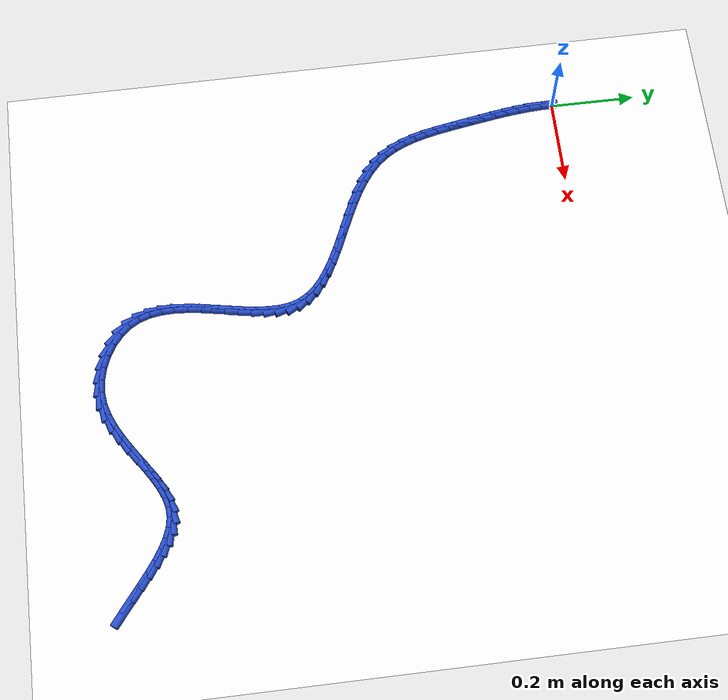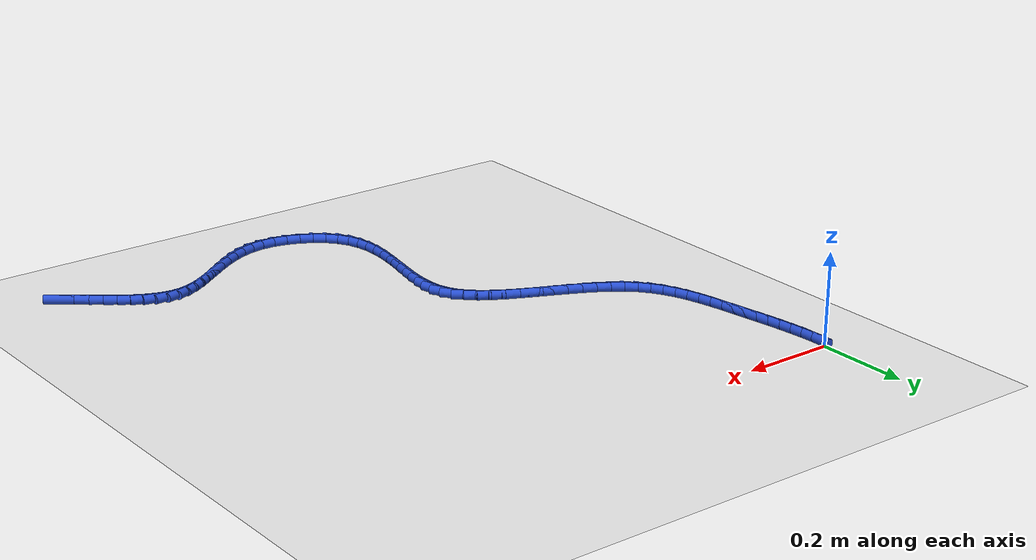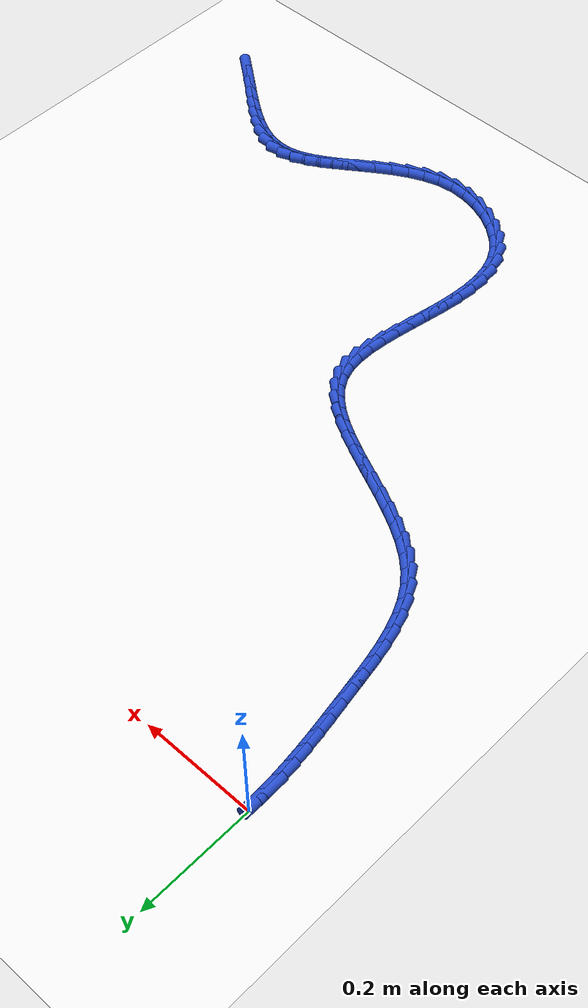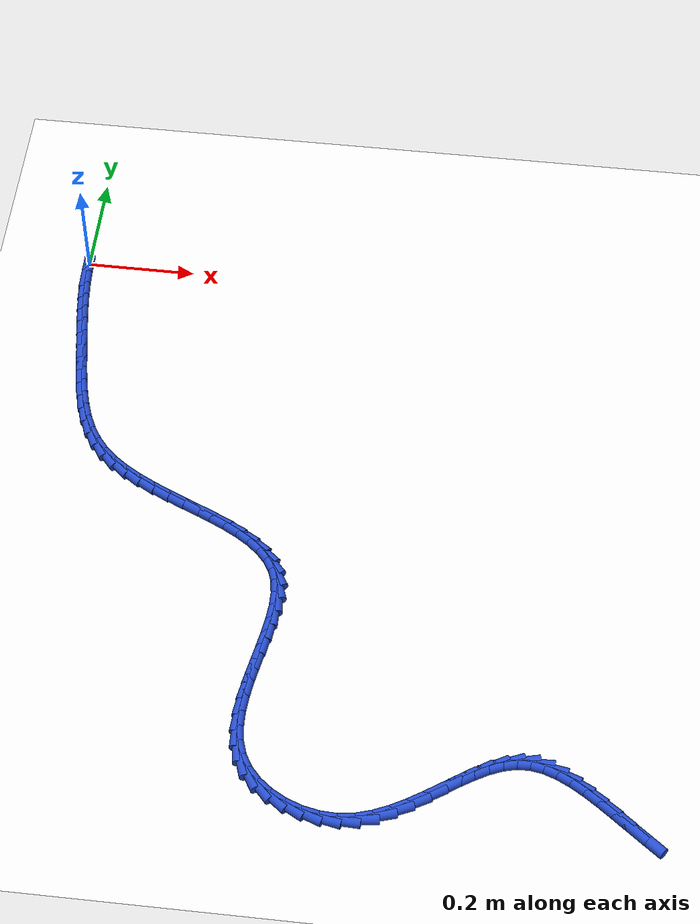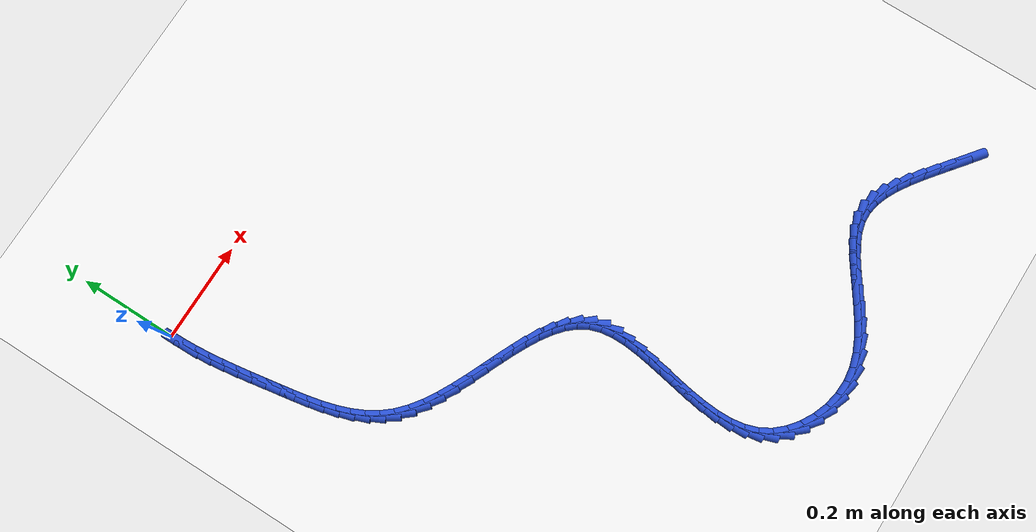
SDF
<sdf version="1.6">
 <world name="default">
  <model name="ground_plane">
   <static>1</static>
   <link name="link">
    <collision name="collision">
     <geometry><plane><normal>0 0 1</normal><size>100 100</size></plane></geometry>
     <surface><friction><ode><mu>100</mu><mu2>50</mu2></ode></friction></surface>
    </collision>
    <visual name="visual">
     <cast_shadows>0</cast_shadows>
     <geometry><plane><normal>0 0 1</normal><size>100 100</size></plane></geometry>
     <material>
      <script><uri>file://media/materials/scripts/gazebo.material</uri><name>Gazebo/WhiteGlow</name></script>
     </material>
    </visual>
   </link>
  </model>
  <model name="line">
   <link name="link_210">
    <pose>1.1062057333107558 -1.1057353948399997 0.01 0 1.57 -0.6610815016299213</pose>
    <collision name="collision">
     <geometry><cylinder><radius>0.01</radius><length>0.08</length></cylinder></geometry>
    </collision>
    <visual name="visual">
     <material>
      <script><name>Gazebo/Blue</name><uri>file://media/materials/scripts/gazebo.material</uri></script>
     </material>
     <geometry><cylinder><radius>0.01</radius><length>0.08</length></cylinder></geometry>
    </visual>
   </link>
   <link name="link_211">
    <pose>1.0803306460984332 -1.085608735080227 0.01 0 1.57 -0.6657473466271625</pose>
    <collision name="collision">
     <geometry><cylinder><radius>0.01</radius><length>0.08</length></cylinder></geometry>
    </collision>
    <visual name="visual">
     <material>
      <script><name>Gazebo/Blue</name><uri>file://media/materials/scripts/gazebo.material</uri></script>
     </material>
     <geometry><cylinder><radius>0.01</radius><length>0.08</length></cylinder></geometry>
    </visual>
   </link>
   <link name="link_212">
    <pose>1.0551812936713683 -1.0658575534856805 0.01 0 1.57 -0.6522005505919386</pose>
    <collision name="collision">
     <geometry><cylinder><radius>0.01</radius><length>0.08</length></cylinder></geometry>
    </collision>
    <visual name="visual">
     <material>
      <script><name>Gazebo/Blue</name><uri>file://media/materials/scripts/gazebo.material</uri></script>
     </material>
     <geometry><cylinder><radius>0.01</radius><length>0.08</length></cylinder></geometry>
    </visual>
   </link>
   <link name="link_213">
    <pose>1.0306461441278354 -1.0471204892540156 0.01 0 1.57 -0.6179934613506017</pose>
    <collision name="collision">
     <geometry><cylinder><radius>0.01</radius><length>0.08</length></cylinder></geometry>
    </collision>
    <visual name="visual">
     <material>
      <script><name>Gazebo/Blue</name><uri>file://media/materials/scripts/gazebo.material</uri></script>
     </material>
     <geometry><cylinder><radius>0.01</radius><length>0.08</length></cylinder></geometry>
    </visual>
   </link>
   <link name="link_214">
    <pose>1.0066136655661073 -1.0300361815828876 0.01 0 1.57 -0.5591185108432015</pose>
    <collision name="collision">
     <geometry><cylinder><radius>0.01</radius><length>0.08</length></cylinder></geometry>
    </collision>
    <visual name="visual">
     <material>
      <script><name>Gazebo/Blue</name><uri>file://media/materials/scripts/gazebo.material</uri></script>
     </material>
     <geometry><cylinder><radius>0.01</radius><length>0.08</length></cylinder></geometry>
    </visual>
   </link>
   <link name="link_215">
    <pose>0.9829723260844585 -1.0152432696699512 0.01 0 1.57 -0.46986095014363216</pose>
    <collision name="collision">
     <geometry><cylinder><radius>0.01</radius><length>0.08</length></cylinder></geometry>
    </collision>
    <visual name="visual">
     <material>
      <script><name>Gazebo/Blue</name><uri>file://media/materials/scripts/gazebo.material</uri></script>
     </material>
     <geometry><cylinder><radius>0.01</radius><length>0.08</length></cylinder></geometry>
    </visual>
   </link>
   <link name="link_216">
    <pose>0.9596105937811626 -1.003380392712862 0.01 0 1.57 -0.3434350857557089</pose>
    <collision name="collision">
     <geometry><cylinder><radius>0.01</radius><length>0.08</length></cylinder></geometry>
    </collision>
    <visual name="visual">
     <material>
      <script><name>Gazebo/Blue</name><uri>file://media/materials/scripts/gazebo.material</uri></script>
     </material>
     <geometry><cylinder><radius>0.01</radius><length>0.08</length></cylinder></geometry>
    </visual>
   </link>
   <link name="link_217">
    <pose>0.9364169367544926 -0.9950861899092748 0.01 0 1.57 -0.17483438120173153</pose>
    <collision name="collision">
     <geometry><cylinder><radius>0.01</radius><length>0.08</length></cylinder></geometry>
    </collision>
    <visual name="visual">
     <material>
      <script><name>Gazebo/Blue</name><uri>file://media/materials/scripts/gazebo.material</uri></script>
     </material>
     <geometry><cylinder><radius>0.01</radius><length>0.08</length></cylinder></geometry>
    </visual>
   </link>
   <link name="link_218">
    <pose>0.9132798231027238 -0.9909993004568451 0.01 0 1.57 0.03270519727304291</pose>
    <collision name="collision">
     <geometry><cylinder><radius>0.01</radius><length>0.08</length></cylinder></geometry>
    </collision>
    <visual name="visual">
     <material>
      <script><name>Gazebo/Blue</name><uri>file://media/materials/scripts/gazebo.material</uri></script>
     </material>
     <geometry><cylinder><radius>0.01</radius><length>0.08</length></cylinder></geometry>
    </visual>
   </link>
   <link name="link_219">
    <pose>0.8900877267090588 -0.991758073099178 0.01 0 1.57 0.2465771402880418</pose>
    <collision name="collision">
     <geometry><cylinder><radius>0.01</radius><length>0.08</length></cylinder></geometry>
    </collision>
    <visual name="visual">
     <material>
      <script><name>Gazebo/Blue</name><uri>file://media/materials/scripts/gazebo.material</uri></script>
     </material>
     <geometry><cylinder><radius>0.01</radius><length>0.08</length></cylinder></geometry>
    </visual>
   </link>
   <link name="link_220">
    <pose>0.8667363965958401 -0.9976355809946775 0.01 0 1.57 0.4077103472474255</pose>
    <collision name="collision">
     <geometry><cylinder><radius>0.01</radius><length>0.08</length></cylinder></geometry>
    </collision>
    <visual name="visual">
     <material>
      <script><name>Gazebo/Blue</name><uri>file://media/materials/scripts/gazebo.material</uri></script>
     </material>
     <geometry><cylinder><radius>0.01</radius><length>0.08</length></cylinder></geometry>
    </visual>
   </link>
   <link name="link_221">
    <pose>0.8431430737289984 -1.0078258138476144 0.01 0 1.57 0.5138796409796674</pose>
    <collision name="collision">
     <geometry><cylinder><radius>0.01</radius><length>0.08</length></cylinder></geometry>
    </collision>
    <visual name="visual">
     <material>
      <script><name>Gazebo/Blue</name><uri>file://media/materials/scripts/gazebo.material</uri></script>
     </material>
     <geometry><cylinder><radius>0.01</radius><length>0.08</length></cylinder></geometry>
    </visual>
   </link>
   <link name="link_222">
    <pose>0.8192289486018826 -1.0213244605584415 0.01 0 1.57 0.5763411163817668</pose>
    <collision name="collision">
     <geometry><cylinder><radius>0.01</radius><length>0.08</length></cylinder></geometry>
    </collision>
    <visual name="visual">
     <material>
      <script><name>Gazebo/Blue</name><uri>file://media/materials/scripts/gazebo.material</uri></script>
     </material>
     <geometry><cylinder><radius>0.01</radius><length>0.08</length></cylinder></geometry>
    </visual>
   </link>
   <link name="link_223">
    <pose>0.7949152117078419 -1.0371272100276125 0.01 0 1.57 0.6038723555258212</pose>
    <collision name="collision">
     <geometry><cylinder><radius>0.01</radius><length>0.08</length></cylinder></geometry>
    </collision>
    <visual name="visual">
     <material>
      <script><name>Gazebo/Blue</name><uri>file://media/materials/scripts/gazebo.material</uri></script>
     </material>
     <geometry><cylinder><radius>0.01</radius><length>0.08</length></cylinder></geometry>
    </visual>
   </link>
   <link name="link_224">
    <pose>0.7701230535402256 -1.0542297511555807 0.01 0 1.57 0.6014917742395954</pose>
    <collision name="collision">
     <geometry><cylinder><radius>0.01</radius><length>0.08</length></cylinder></geometry>
    </collision>
    <visual name="visual">
     <material>
      <script><name>Gazebo/Blue</name><uri>file://media/materials/scripts/gazebo.material</uri></script>
     </material>
     <geometry><cylinder><radius>0.01</radius><length>0.08</length></cylinder></geometry>
    </visual>
   </link>
   <link name="link_225">
    <pose>0.7447736645923826 -1.0716277728427996 0.01 0 1.57 0.570909099315519</pose>
    <collision name="collision">
     <geometry><cylinder><radius>0.01</radius><length>0.08</length></cylinder></geometry>
    </collision>
    <visual name="visual">
     <material>
      <script><name>Gazebo/Blue</name><uri>file://media/materials/scripts/gazebo.material</uri></script>
     </material>
     <geometry><cylinder><radius>0.01</radius><length>0.08</length></cylinder></geometry>
    </visual>
   </link>
   <link name="link_226">
    <pose>0.7187882353576612 -1.088316963989723 0.01 0 1.57 0.5111692960184688</pose>
    <collision name="collision">
     <geometry><cylinder><radius>0.01</radius><length>0.08</length></cylinder></geometry>
    </collision>
    <visual name="visual">
     <material>
      <script><name>Gazebo/Blue</name><uri>file://media/materials/scripts/gazebo.material</uri></script>
     </material>
     <geometry><cylinder><radius>0.01</radius><length>0.08</length></cylinder></geometry>
    </visual>
   </link>
   <link name="link_227">
    <pose>0.6920879563294127 -1.1032930134968033 0.01 0 1.57 0.4194103037760361</pose>
    <collision name="collision">
     <geometry><cylinder><radius>0.01</radius><length>0.08</length></cylinder></geometry>
    </collision>
    <visual name="visual">
     <material>
      <script><name>Gazebo/Blue</name><uri>file://media/materials/scripts/gazebo.material</uri></script>
     </material>
     <geometry><cylinder><radius>0.01</radius><length>0.08</length></cylinder></geometry>
    </visual>
   </link>
   <link name="link_228">
    <pose>0.6645940180009849 -1.1155516102644947 0.01 0 1.57 0.29232692037844354</pose>
    <collision name="collision">
     <geometry><cylinder><radius>0.01</radius><length>0.08</length></cylinder></geometry>
    </collision>
    <visual name="visual">
     <material>
      <script><name>Gazebo/Blue</name><uri>file://media/materials/scripts/gazebo.material</uri></script>
     </material>
     <geometry><cylinder><radius>0.01</radius><length>0.08</length></cylinder></geometry>
    </visual>
   </link>
   <link name="link_229">
    <pose>0.6362276108657272 -1.1240884431932503 0.01 0 1.57 0.12933223231681004</pose>
    <collision name="collision">
     <geometry><cylinder><radius>0.01</radius><length>0.08</length></cylinder></geometry>
    </collision>
    <visual name="visual">
     <material>
      <script><name>Gazebo/Blue</name><uri>file://media/materials/scripts/gazebo.material</uri></script>
     </material>
     <geometry><cylinder><radius>0.01</radius><length>0.08</length></cylinder></geometry>
    </visual>
   </link>
   <link name="link_230">
    <pose>0.6069114308926543 -1.1279012526700385 0.01 0 1.57 -0.049611533000755714</pose>
    <collision name="collision">
     <geometry><cylinder><radius>0.01</radius><length>0.08</length></cylinder></geometry>
    </collision>
    <visual name="visual">
     <material>
      <script><name>Gazebo/Blue</name><uri>file://media/materials/scripts/gazebo.material</uri></script>
     </material>
     <geometry><cylinder><radius>0.01</radius><length>0.08</length></cylinder></geometry>
    </visual>
   </link>
   <link name="link_231">
    <pose>0.5768780386464855 -1.1264100263848502 0.01 0 1.57 -0.21259696583422433</pose>
    <collision name="collision">
     <geometry><cylinder><radius>0.01</radius><length>0.08</length></cylinder></geometry>
    </collision>
    <visual name="visual">
     <material>
      <script><name>Gazebo/Blue</name><uri>file://media/materials/scripts/gazebo.material</uri></script>
     </material>
     <geometry><cylinder><radius>0.01</radius><length>0.08</length></cylinder></geometry>
    </visual>
   </link>
   <link name="link_232">
    <pose>0.5470468330554319 -1.1199706951803194 0.01 0 1.57 -0.36409959662557956</pose>
    <collision name="collision">
     <geometry><cylinder><radius>0.01</radius><length>0.08</length></cylinder></geometry>
    </collision>
    <visual name="visual">
     <material>
      <script><name>Gazebo/Blue</name><uri>file://media/materials/scripts/gazebo.material</uri></script>
     </material>
     <geometry><cylinder><radius>0.01</radius><length>0.08</length></cylinder></geometry>
    </visual>
   </link>
   <link name="link_233">
    <pose>0.5184294517337069 -1.1090648820140847 0.01 0 1.57 -0.5136900114375678</pose>
    <collision name="collision">
     <geometry><cylinder><radius>0.01</radius><length>0.08</length></cylinder></geometry>
    </collision>
    <visual name="visual">
     <material>
      <script><name>Gazebo/Blue</name><uri>file://media/materials/scripts/gazebo.material</uri></script>
     </material>
     <geometry><cylinder><radius>0.01</radius><length>0.08</length></cylinder></geometry>
    </visual>
   </link>
   <link name="link_234">
    <pose>0.49203753229552255 -1.0941742098437828 0.01 0 1.57 -0.6713095345362318</pose>
    <collision name="collision">
     <geometry><cylinder><radius>0.01</radius><length>0.08</length></cylinder></geometry>
    </collision>
    <visual name="visual">
     <material>
      <script><name>Gazebo/Blue</name><uri>file://media/materials/scripts/gazebo.material</uri></script>
     </material>
     <geometry><cylinder><radius>0.01</radius><length>0.08</length></cylinder></geometry>
    </visual>
   </link>
   <link name="link_235">
    <pose>0.46888271235509393 -1.075780301627052 0.01 0 1.57 -0.8475535793495111</pose>
    <collision name="collision">
     <geometry><cylinder><radius>0.01</radius><length>0.08</length></cylinder></geometry>
    </collision>
    <visual name="visual">
     <material>
      <script><name>Gazebo/Blue</name><uri>file://media/materials/scripts/gazebo.material</uri></script>
     </material>
     <geometry><cylinder><radius>0.01</radius><length>0.08</length></cylinder></geometry>
    </visual>
   </link>
   <link name="link_236">
    <pose>0.4499766295266333 -1.05436478032153 0.01 0 1.57 -1.050681556429276</pose>
    <collision name="collision">
     <geometry><cylinder><radius>0.01</radius><length>0.08</length></cylinder></geometry>
    </collision>
    <visual name="visual">
     <material>
      <script><name>Gazebo/Blue</name><uri>file://media/materials/scripts/gazebo.material</uri></script>
     </material>
     <geometry><cylinder><radius>0.01</radius><length>0.08</length></cylinder></geometry>
    </visual>
   </link>
   <link name="link_237">
    <pose>0.4362541380942949 -1.0304043292228466 0.01 0 1.57 -1.2523111166994865</pose>
    <collision name="collision">
     <geometry><cylinder><radius>0.01</radius><length>0.08</length></cylinder></geometry>
    </collision>
    <visual name="visual">
     <material>
      <script><name>Gazebo/Blue</name><uri>file://media/materials/scripts/gazebo.material</uri></script>
     </material>
     <geometry><cylinder><radius>0.01</radius><length>0.08</length></cylinder></geometry>
    </visual>
   </link>
   <link name="link_238">
    <pose>0.4276510487910825 -1.0043113606778407 0.01 0 1.57 -1.419515017268828</pose>
    <collision name="collision">
     <geometry><cylinder><radius>0.01</radius><length>0.08</length></cylinder></geometry>
    </collision>
    <visual name="visual">
     <material>
      <script><name>Gazebo/Blue</name><uri>file://media/materials/scripts/gazebo.material</uri></script>
     </material>
     <geometry><cylinder><radius>0.01</radius><length>0.08</length></cylinder></geometry>
    </visual>
   </link>
   <link name="link_239">
    <pose>0.4234042006075936 -0.9764533204480508 0.01 0 1.57 -1.5479635110189494</pose>
    <collision name="collision">
     <geometry><cylinder><radius>0.01</radius><length>0.08</length></cylinder></geometry>
    </collision>
    <visual name="visual">
     <material>
      <script><name>Gazebo/Blue</name><uri>file://media/materials/scripts/gazebo.material</uri></script>
     </material>
     <geometry><cylinder><radius>0.01</radius><length>0.08</length></cylinder></geometry>
    </visual>
   </link>
   <link name="link_240">
    <pose>0.42273607417055215 -0.9471967305858663 0.01 0 1.57 1.5004874083179267</pose>
    <collision name="collision">
     <geometry><cylinder><radius>0.01</radius><length>0.08</length></cylinder></geometry>
    </collision>
    <visual name="visual">
     <material>
      <script><name>Gazebo/Blue</name><uri>file://media/materials/scripts/gazebo.material</uri></script>
     </material>
     <geometry><cylinder><radius>0.01</radius><length>0.08</length></cylinder></geometry>
    </visual>
   </link>
   <link name="link_241">
    <pose>0.4248691501066818 -0.9169081131436759 0.01 0 1.57 1.4373071851227224</pose>
    <collision name="collision">
     <geometry><cylinder><radius>0.01</radius><length>0.08</length></cylinder></geometry>
    </collision>
    <visual name="visual">
     <material>
      <script><name>Gazebo/Blue</name><uri>file://media/materials/scripts/gazebo.material</uri></script>
     </material>
     <geometry><cylinder><radius>0.01</radius><length>0.08</length></cylinder></geometry>
    </visual>
   </link>
   <link name="link_242">
    <pose>0.4290259090427067 -0.8859539901738688 0.01 0 1.57 1.3996119591055523</pose>
    <collision name="collision">
     <geometry><cylinder><radius>0.01</radius><length>0.08</length></cylinder></geometry>
    </collision>
    <visual name="visual">
     <material>
      <script><name>Gazebo/Blue</name><uri>file://media/materials/scripts/gazebo.material</uri></script>
     </material>
     <geometry><cylinder><radius>0.01</radius><length>0.08</length></cylinder></geometry>
    </visual>
   </link>
   <link name="link_243">
    <pose>0.4344288316053506 -0.8547008837288329 0.01 0 1.57 1.3846965812739227</pose>
    <collision name="collision">
     <geometry><cylinder><radius>0.01</radius><length>0.08</length></cylinder></geometry>
    </collision>
    <visual name="visual">
     <material>
      <script><name>Gazebo/Blue</name><uri>file://media/materials/scripts/gazebo.material</uri></script>
     </material>
     <geometry><cylinder><radius>0.01</radius><length>0.08</length></cylinder></geometry>
    </visual>
   </link>
   <link name="link_244">
    <pose>0.44030039842133734 -0.8235153158609588 0.01 0 1.57 1.3918398302800548</pose>
    <collision name="collision">
     <geometry><cylinder><radius>0.01</radius><length>0.08</length></cylinder></geometry>
    </collision>
    <visual name="visual">
     <material>
      <script><name>Gazebo/Blue</name><uri>file://media/materials/scripts/gazebo.material</uri></script>
     </material>
     <geometry><cylinder><radius>0.01</radius><length>0.08</length></cylinder></geometry>
    </visual>
   </link>
   <link name="link_245">
    <pose>0.4458630901173908 -0.7927638086226348 0.01 0 1.57 1.4224400243449111</pose>
    <collision name="collision">
     <geometry><cylinder><radius>0.01</radius><length>0.08</length></cylinder></geometry>
    </collision>
    <visual name="visual">
     <material>
      <script><name>Gazebo/Blue</name><uri>file://media/materials/scripts/gazebo.material</uri></script>
     </material>
     <geometry><cylinder><radius>0.01</radius><length>0.08</length></cylinder></geometry>
    </visual>
   </link>
   <link name="link_246">
    <pose>0.45033938732023465 -0.7628128840662499 0.01 0 1.57 1.4802855561102803</pose>
    <collision name="collision">
     <geometry><cylinder><radius>0.01</radius><length>0.08</length></cylinder></geometry>
    </collision>
    <visual name="visual">
     <material>
      <script><name>Gazebo/Blue</name><uri>file://media/materials/scripts/gazebo.material</uri></script>
     </material>
     <geometry><cylinder><radius>0.01</radius><length>0.08</length></cylinder></geometry>
    </visual>
   </link>
   <link name="link_247">
    <pose>0.45295177065659303 -0.7340290642441928 0.01 0 1.57 -1.5697302832494011</pose>
    <collision name="collision">
     <geometry><cylinder><radius>0.01</radius><length>0.08</length></cylinder></geometry>
    </collision>
    <visual name="visual">
     <material>
      <script><name>Gazebo/Blue</name><uri>file://media/materials/scripts/gazebo.material</uri></script>
     </material>
     <geometry><cylinder><radius>0.01</radius><length>0.08</length></cylinder></geometry>
    </visual>
   </link>
   <link name="link_248">
    <pose>0.4529227207531896 -0.7067788712088524 0.01 0 1.57 -1.43561027099902</pose>
    <collision name="collision">
     <geometry><cylinder><radius>0.01</radius><length>0.08</length></cylinder></geometry>
    </collision>
    <visual name="visual">
     <material>
      <script><name>Gazebo/Blue</name><uri>file://media/materials/scripts/gazebo.material</uri></script>
     </material>
     <geometry><cylinder><radius>0.01</radius><length>0.08</length></cylinder></geometry>
    </visual>
   </link>
   <link name="link_249">
    <pose>0.44947471823674845 -0.6814288270126179 0.01 0 1.57 -1.2511037168179218</pose>
    <collision name="collision">
     <geometry><cylinder><radius>0.01</radius><length>0.08</length></cylinder></geometry>
    </collision>
    <visual name="visual">
     <material>
      <script><name>Gazebo/Blue</name><uri>file://media/materials/scripts/gazebo.material</uri></script>
     </material>
     <geometry><cylinder><radius>0.01</radius><length>0.08</length></cylinder></geometry>
    </visual>
   </link>
   <link name="link_250">
    <pose>0.4418325986129672 -0.6583442203480429 0.01 0 1.57 -1.0369244425172623</pose>
    <collision name="collision">
     <geometry><cylinder><radius>0.01</radius><length>0.08</length></cylinder></geometry>
    </collision>
    <visual name="visual">
     <material>
      <script><name>Gazebo/Blue</name><uri>file://media/materials/scripts/gazebo.material</uri></script>
     </material>
     <geometry><cylinder><radius>0.01</radius><length>0.08</length></cylinder></geometry>
    </visual>
   </link>
   <link name="link_251">
    <pose>0.42961864602966626 -0.637682177536237 0.01 0 1.57 -0.8484745818076392</pose>
    <collision name="collision">
     <geometry><cylinder><radius>0.01</radius><length>0.08</length></cylinder></geometry>
    </collision>
    <visual name="visual">
     <material>
      <script><name>Gazebo/Blue</name><uri>file://media/materials/scripts/gazebo.material</uri></script>
     </material>
     <geometry><cylinder><radius>0.01</radius><length>0.08</length></cylinder></geometry>
    </visual>
   </link>
   <link name="link_252">
    <pose>0.4132964765371475 -0.6191591801824095 0.01 0 1.57 -0.6998825650086741</pose>
    <collision name="collision">
     <geometry><cylinder><radius>0.01</radius><length>0.08</length></cylinder></geometry>
    </collision>
    <visual name="visual">
     <material>
      <script><name>Gazebo/Blue</name><uri>file://media/materials/scripts/gazebo.material</uri></script>
     </material>
     <geometry><cylinder><radius>0.01</radius><length>0.08</length></cylinder></geometry>
    </visual>
   </link>
   <link name="link_253">
    <pose>0.39343682054134027 -0.6024356091131553 0.01 0 1.57 -0.589401170592686</pose>
    <collision name="collision">
     <geometry><cylinder><radius>0.01</radius><length>0.08</length></cylinder></geometry>
    </collision>
    <visual name="visual">
     <material>
      <script><name>Gazebo/Blue</name><uri>file://media/materials/scripts/gazebo.material</uri></script>
     </material>
     <geometry><cylinder><radius>0.01</radius><length>0.08</length></cylinder></geometry>
    </visual>
   </link>
   <link name="link_254">
    <pose>0.37061040844817356 -0.587171845155068 0.01 0 1.57 -0.5110619257076</pose>
    <collision name="collision">
     <geometry><cylinder><radius>0.01</radius><length>0.08</length></cylinder></geometry>
    </collision>
    <visual name="visual">
     <material>
      <script><name>Gazebo/Blue</name><uri>file://media/materials/scripts/gazebo.material</uri></script>
     </material>
     <geometry><cylinder><radius>0.01</radius><length>0.08</length></cylinder></geometry>
    </visual>
   </link>
   <link name="link_255">
    <pose>0.3453879706635757 -0.5730282691347414 0.01 0 1.57 -0.45887851028174187</pose>
    <collision name="collision">
     <geometry><cylinder><radius>0.01</radius><length>0.08</length></cylinder></geometry>
    </collision>
    <visual name="visual">
     <material>
      <script><name>Gazebo/Blue</name><uri>file://media/materials/scripts/gazebo.material</uri></script>
     </material>
     <geometry><cylinder><radius>0.01</radius><length>0.08</length></cylinder></geometry>
    </visual>
   </link>
   <link name="link_256">
    <pose>0.31834023759347563 -0.5596652618787691 0.01 0 1.57 -0.4283063552282137</pose>
    <collision name="collision">
     <geometry><cylinder><radius>0.01</radius><length>0.08</length></cylinder></geometry>
    </collision>
    <visual name="visual">
     <material>
      <script><name>Gazebo/Blue</name><uri>file://media/materials/scripts/gazebo.material</uri></script>
     </material>
     <geometry><cylinder><radius>0.01</radius><length>0.08</length></cylinder></geometry>
    </visual>
   </link>
   <link name="link_257">
    <pose>0.29003793964380226 -0.5467432042137452 0.01 0 1.57 -0.4164368255220857</pose>
    <collision name="collision">
     <geometry><cylinder><radius>0.01</radius><length>0.08</length></cylinder></geometry>
    </collision>
    <visual name="visual">
     <material>
      <script><name>Gazebo/Blue</name><uri>file://media/materials/scripts/gazebo.material</uri></script>
     </material>
     <geometry><cylinder><radius>0.01</radius><length>0.08</length></cylinder></geometry>
    </visual>
   </link>
   <link name="link_258">
    <pose>0.2610518072204843 -0.5339224769662634 0.01 0 1.57 -0.4218349240883536</pose>
    <collision name="collision">
     <geometry><cylinder><radius>0.01</radius><length>0.08</length></cylinder></geometry>
    </collision>
    <visual name="visual">
     <material>
      <script><name>Gazebo/Blue</name><uri>file://media/materials/scripts/gazebo.material</uri></script>
     </material>
     <geometry><cylinder><radius>0.01</radius><length>0.08</length></cylinder></geometry>
    </visual>
   </link>
   <link name="link_259">
    <pose>0.23195257072945066 -0.5208634609629179 0.01 0 1.57 -0.44436405055102296</pose>
    <collision name="collision">
     <geometry><cylinder><radius>0.01</radius><length>0.08</length></cylinder></geometry>
    </collision>
    <visual name="visual">
     <material>
      <script><name>Gazebo/Blue</name><uri>file://media/materials/scripts/gazebo.material</uri></script>
     </material>
     <geometry><cylinder><radius>0.01</radius><length>0.08</length></cylinder></geometry>
    </visual>
   </link>
   <link name="link_260">
    <pose>0.20331096057663015 -0.5072265370303023 0.01 0 1.57 -0.48507780629755903</pose>
    <collision name="collision">
     <geometry><cylinder><radius>0.01</radius><length>0.08</length></cylinder></geometry>
    </collision>
    <visual name="visual">
     <material>
      <script><name>Gazebo/Blue</name><uri>file://media/materials/scripts/gazebo.material</uri></script>
     </material>
     <geometry><cylinder><radius>0.01</radius><length>0.08</length></cylinder></geometry>
    </visual>
   </link>
   <link name="link_261">
    <pose>0.17569770716795063 -0.49267208599501006 0.01 0 1.57 -0.5461403145431788</pose>
    <collision name="collision">
     <geometry><cylinder><radius>0.01</radius><length>0.08</length></cylinder></geometry>
    </collision>
    <visual name="visual">
     <material>
      <script><name>Gazebo/Blue</name><uri>file://media/materials/scripts/gazebo.material</uri></script>
     </material>
     <geometry><cylinder><radius>0.01</radius><length>0.08</length></cylinder></geometry>
    </visual>
   </link>
   <link name="link_262">
    <pose>0.1496835409093428 -0.47686048868363606 0.01 0 1.57 -0.6306321504981508</pose>
    <collision name="collision">
     <geometry><cylinder><radius>0.01</radius><length>0.08</length></cylinder></geometry>
    </collision>
    <visual name="visual">
     <material>
      <script><name>Gazebo/Blue</name><uri>file://media/materials/scripts/gazebo.material</uri></script>
     </material>
     <geometry><cylinder><radius>0.01</radius><length>0.08</length></cylinder></geometry>
    </visual>
   </link>
   <link name="link_263">
    <pose>0.12583919220673453 -0.4594521259227736 0.01 0 1.57 -0.7419368835648211</pose>
    <collision name="collision">
     <geometry><cylinder><radius>0.01</radius><length>0.08</length></cylinder></geometry>
    </collision>
    <visual name="visual">
     <material>
      <script><name>Gazebo/Blue</name><uri>file://media/materials/scripts/gazebo.material</uri></script>
     </material>
     <geometry><cylinder><radius>0.01</radius><length>0.08</length></cylinder></geometry>
    </visual>
   </link>
   <link name="link_264">
    <pose>0.10473539146605461 -0.44010737853901666 0.01 0 1.57 -0.8797344291495768</pose>
    <collision name="collision">
     <geometry><cylinder><radius>0.01</radius><length>0.08</length></cylinder></geometry>
    </collision>
    <visual name="visual">
     <material>
      <script><name>Gazebo/Blue</name><uri>file://media/materials/scripts/gazebo.material</uri></script>
     </material>
     <geometry><cylinder><radius>0.01</radius><length>0.08</length></cylinder></geometry>
    </visual>
   </link>
   <link name="link_265">
    <pose>0.08688474355708965 -0.41852576396262603 0.01 0 1.57 -1.0163932293946425</pose>
    <collision name="collision">
     <geometry><cylinder><radius>0.01</radius><length>0.08</length></cylinder></geometry>
    </collision>
    <visual name="visual">
     <material>
      <script><name>Gazebo/Blue</name><uri>file://media/materials/scripts/gazebo.material</uri></script>
     </material>
     <geometry><cylinder><radius>0.01</radius><length>0.08</length></cylinder></geometry>
    </visual>
   </link>
   <link name="link_266">
    <pose>0.07220059706327586 -0.39481028589393014 0.01 0 1.57 -1.132449333722148</pose>
    <collision name="collision">
     <geometry><cylinder><radius>0.01</radius><length>0.08</length></cylinder></geometry>
    </collision>
    <visual name="visual">
     <material>
      <script><name>Gazebo/Blue</name><uri>file://media/materials/scripts/gazebo.material</uri></script>
     </material>
     <geometry><cylinder><radius>0.01</radius><length>0.08</length></cylinder></geometry>
    </visual>
   </link>
   <link name="link_267">
    <pose>0.06024313946752582 -0.36930173553491463 0.01 0 1.57 -1.2262152544391671</pose>
    <collision name="collision">
     <geometry><cylinder><radius>0.01</radius><length>0.08</length></cylinder></geometry>
    </collision>
    <visual name="visual">
     <material>
      <script><name>Gazebo/Blue</name><uri>file://media/materials/scripts/gazebo.material</uri></script>
     </material>
     <geometry><cylinder><radius>0.01</radius><length>0.08</length></cylinder></geometry>
    </visual>
   </link>
   <link name="link_268">
    <pose>0.05056800794071503 -0.34234396786590726 0.01 0 1.57 -1.29846540886337</pose>
    <collision name="collision">
     <geometry><cylinder><radius>0.01</radius><length>0.08</length></cylinder></geometry>
    </collision>
    <visual name="visual">
     <material>
      <script><name>Gazebo/Blue</name><uri>file://media/materials/scripts/gazebo.material</uri></script>
     </material>
     <geometry><cylinder><radius>0.01</radius><length>0.08</length></cylinder></geometry>
    </visual>
   </link>
   <link name="link_269">
    <pose>0.04273083965371907 -0.3142808378672355 0.01 0 1.57 -1.3508683840795372</pose>
    <collision name="collision">
     <geometry><cylinder><radius>0.01</radius><length>0.08</length></cylinder></geometry>
    </collision>
    <visual name="visual">
     <material>
      <script><name>Gazebo/Blue</name><uri>file://media/materials/scripts/gazebo.material</uri></script>
     </material>
     <geometry><cylinder><radius>0.01</radius><length>0.08</length></cylinder></geometry>
    </visual>
   </link>
   <link name="link_270">
    <pose>0.03628727177741332 -0.28545620051922604 0.01 0 1.57 -1.385071764987998</pose>
    <collision name="collision">
     <geometry><cylinder><radius>0.01</radius><length>0.08</length></cylinder></geometry>
    </collision>
    <visual name="visual">
     <material>
      <script><name>Gazebo/Blue</name><uri>file://media/materials/scripts/gazebo.material</uri></script>
     </material>
     <geometry><cylinder><radius>0.01</radius><length>0.08</length></cylinder></geometry>
    </visual>
   </link>
   <link name="link_271">
    <pose>0.030792941482673704 -0.2562139108022083 0.01 0 1.57 -1.4022165171344738</pose>
    <collision name="collision">
     <geometry><cylinder><radius>0.01</radius><length>0.08</length></cylinder></geometry>
    </collision>
    <visual name="visual">
     <material>
      <script><name>Gazebo/Blue</name><uri>file://media/materials/scripts/gazebo.material</uri></script>
     </material>
     <geometry><cylinder><radius>0.01</radius><length>0.08</length></cylinder></geometry>
    </visual>
   </link>
   <link name="link_272">
    <pose>0.025803485940375584 -0.22689782369650896 0.01 0 1.57 -1.4050186549248058</pose>
    <collision name="collision">
     <geometry><cylinder><radius>0.01</radius><length>0.08</length></cylinder></geometry>
    </collision>
    <visual name="visual">
     <material>
      <script><name>Gazebo/Blue</name><uri>file://media/materials/scripts/gazebo.material</uri></script>
     </material>
     <geometry><cylinder><radius>0.01</radius><length>0.08</length></cylinder></geometry>
    </visual>
   </link>
   <link name="link_273">
    <pose>0.02093711831776657 -0.19781244614129118 0.01 0 1.57 -1.4079887795503592</pose>
    <collision name="collision">
     <geometry><cylinder><radius>0.01</radius><length>0.08</length></cylinder></geometry>
    </collision>
    <visual name="visual">
     <material>
      <script><name>Gazebo/Blue</name><uri>file://media/materials/scripts/gazebo.material</uri></script>
     </material>
     <geometry><cylinder><radius>0.01</radius><length>0.08</length></cylinder></geometry>
    </visual>
   </link>
   <link name="link_274">
    <pose>0.016206668497293422 -0.169014148479354 0.01 0 1.57 -1.4169231639025857</pose>
    <collision name="collision">
     <geometry><cylinder><radius>0.01</radius><length>0.08</length></cylinder></geometry>
    </collision>
    <visual name="visual">
     <material>
      <script><name>Gazebo/Blue</name><uri>file://media/materials/scripts/gazebo.material</uri></script>
     </material>
     <geometry><cylinder><radius>0.01</radius><length>0.08</length></cylinder></geometry>
    </visual>
   </link>
   <link name="link_275">
    <pose>0.011778382458306378 -0.14046283238745494 0.01 0 1.57 -1.43200201502579</pose>
    <collision name="collision">
     <geometry><cylinder><radius>0.01</radius><length>0.08</length></cylinder></geometry>
    </collision>
    <visual name="visual">
     <material>
      <script><name>Gazebo/Blue</name><uri>file://media/materials/scripts/gazebo.material</uri></script>
     </material>
     <geometry><cylinder><radius>0.01</radius><length>0.08</length></cylinder></geometry>
    </visual>
   </link>
   <link name="link_276">
    <pose>0.007818848515500776 -0.11211818428049299 0.01 0 1.57 -1.4533690539362214</pose>
    <collision name="collision">
     <geometry><cylinder><radius>0.01</radius><length>0.08</length></cylinder></geometry>
    </collision>
    <visual name="visual">
     <material>
      <script><name>Gazebo/Blue</name><uri>file://media/materials/scripts/gazebo.material</uri></script>
     </material>
     <geometry><cylinder><radius>0.01</radius><length>0.08</length></cylinder></geometry>
    </visual>
   </link>
   <link name="link_277">
    <pose>0.004494654983571985 -0.08393989057336743 0.01 0 1.57 -1.4811243625777237</pose>
    <collision name="collision">
     <geometry><cylinder><radius>0.01</radius><length>0.08</length></cylinder></geometry>
    </collision>
    <visual name="visual">
     <material>
      <script><name>Gazebo/Blue</name><uri>file://media/materials/scripts/gazebo.material</uri></script>
     </material>
     <geometry><cylinder><radius>0.01</radius><length>0.08</length></cylinder></geometry>
    </visual>
   </link>
   <link name="link_278">
    <pose>0.0019723901772153597 -0.05588763768097745 0.01 0 1.57 -1.5152959716143137</pose>
    <collision name="collision">
     <geometry><cylinder><radius>0.01</radius><length>0.08</length></cylinder></geometry>
    </collision>
    <visual name="visual">
     <material>
      <script><name>Gazebo/Blue</name><uri>file://media/materials/scripts/gazebo.material</uri></script>
     </material>
     <geometry><cylinder><radius>0.01</radius><length>0.08</length></cylinder></geometry>
    </visual>
   </link>
   <link name="link_279">
    <pose>0.000418642411126218 -0.02792111201822137 0.01 0 1.57 -1.5558036917226523</pose>
    <collision name="collision">
     <geometry><cylinder><radius>0.01</radius><length>0.08</length></cylinder></geometry>
    </collision>
    <visual name="visual">
     <material>
      <script><name>Gazebo/Blue</name><uri>file://media/materials/scripts/gazebo.material</uri></script>
     </material>
     <geometry><cylinder><radius>0.01</radius><length>0.08</length></cylinder></geometry>
    </visual>
   </link>
  </model>
 </world>
</sdf>
